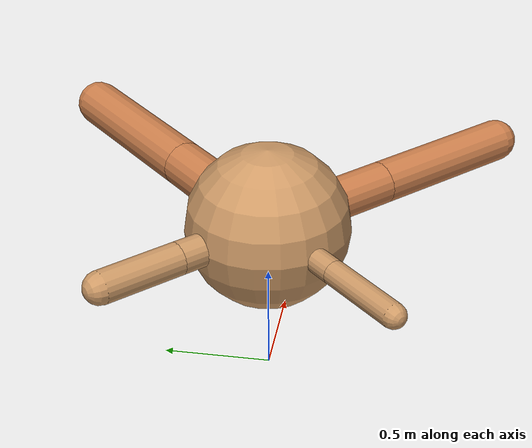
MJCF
<?xml version="1.0" ?>
<mujoco model="ant">

	<compiler angle="degree" coordinate="local" inertiafromgeom="true"/>

	<option integrator="RK4" timestep="0.01"/>

	<custom>

		<numeric data="0.0 0.0 0.55 1.0 0.0 0.0 0.0 0.0 1.0 0.0 -1.0 0.0 -1.0 0.0 1.0" name="init_qpos"/>

	</custom>

	<default>

		<joint armature="1" damping="1" limited="true"/>

		<geom conaffinity="0" condim="3" density="5.0" friction="1.5 0.1 0.1" margin="0.01" rgba="0.8 0.6 0.4 1"/>

	</default>

	<worldbody>

		<body name="torso" pos="0 0 0.75">

			<geom name="torso_geom" pos="0 0 0" size="0.37430672766689865" type="sphere"/>

			<!--joint armature="0" damping="0" limited="false" margin="0.01" name="root" pos="0 0 0" type="free"/-->

			<body name="front_left_leg" pos="0 0 0">

				<geom fromto="0 0 0 0.2 0.2 0" name="aux_1_geom" size="0.1109745231669503" type="capsule" rgba=".8 .5 .3 1"/>

				<body name="aux_1" pos="0.2 0.2 0">

					<joint axis="0 0 1" name="hip_1" pos="0.0 0.0 0.0" range="-40 40" type="hinge"/>

					<geom fromto="0 0 0 0.2901896917085083 0.2901896917085083 0" name="left_leg_geom" size="0.1109745231669503" type="capsule" rgba=".8 .5 .3 1"/>

					<body pos="0.2901896917085083 0.2901896917085083 0" name="front_left_foot">

						<joint axis="-1 1 0" name="ankle_1" pos="0.0 0.0 0.0" range="30 100" type="hinge"/>

						<geom fromto="0 0 0 0.5803793834170166 0.5803793834170166 0" name="left_ankle_geom" size="0.1109745231669503" type="capsule" rgba=".8 .5 .3 1"/>

					</body>

				</body>

			</body>

			<body name="front_right_leg" pos="0 0 0">

				<geom fromto="0 0 0 -0.2 0.2 0" name="aux_2_geom" size="0.0755437694327452" type="capsule"/>

				<body name="aux_2" pos="-0.2 0.2 0">

					<joint axis="0 0 1" name="hip_2" pos="0.0 0.0 0.0" range="-40 40" type="hinge"/>

					<geom fromto="0 0 0 -0.13429889529786482 0.13429889529786482 0" name="right_leg_geom" size="0.0755437694327452" type="capsule"/>

					<body pos="-0.13429889529786482 0.13429889529786482 0" name="front_right_foot">

						<joint axis="1 1 0" name="ankle_2" pos="0.0 0.0 0.0" range="-100 -30" type="hinge"/>

						<geom fromto="0 0 0 -0.26859779059572964 0.26859779059572964 0" name="right_ankle_geom" size="0.0755437694327452" type="capsule"/>

					</body>

				</body>

			</body>

			<body name="left_back_leg" pos="0 0 0">

				<geom fromto="0 0 0 -0.2 -0.2 0" name="aux_3_geom" size="0.05631156589230876" type="capsule"/>

				<body name="aux_3" pos="-0.2 -0.2 0">

					<joint axis="0 0 1" name="hip_3" pos="0.0 0.0 0.0" range="-40 40" type="hinge"/>

					<geom fromto="0 0 0 -0.13751472175940846 -0.13751472175940846 0" name="back_leg_geom" size="0.05631156589230876" type="capsule"/>

					<body pos="-0.13751472175940846 -0.13751472175940846 0" name="left_back_foot">

						<joint axis="-1 1 0" name="ankle_3" pos="0.0 0.0 0.0" range="-100 -30" type="hinge"/>

						<geom fromto="0 0 0 -0.2750294435188169 -0.2750294435188169 0" name="third_ankle_geom" size="0.05631156589230876" type="capsule"/>

					</body>

				</body>

			</body>

			<body name="right_back_leg" pos="0 0 0">

				<geom fromto="0 0 0 0.2 -0.2 0" name="aux_4_geom" size="0.10038463836449527" type="capsule" rgba=".8 .5 .3 1"/>

				<body name="aux_4" pos="0.2 -0.2 0">

					<joint axis="0 0 1" name="hip_4" pos="0.0 0.0 0.0" range="-40 40" type="hinge"/>

					<geom fromto="0 0 0 0.25816281416723424 -0.25816281416723424 0" name="rightback_leg_geom" size="0.10038463836449527" type="capsule" rgba=".8 .5 .3 1"/>

					<body pos="0.25816281416723424 -0.25816281416723424 0" name="right_back_foot">

						<joint axis="1 1 0" name="ankle_4" pos="0.0 0.0 0.0" range="30 100" type="hinge"/>

						<geom fromto="0 0 0 0.5163256283344685 -0.5163256283344685 0" name="fourth_ankle_geom" size="0.10038463836449527" type="capsule" rgba=".8 .5 .3 1"/>

					</body>

				</body>

			</body>

		</body>

	</worldbody>

	<actuator>

		<motor ctrllimited="true" ctrlrange="-1.0 1.0" joint="hip_4" gear="150"/>

		<motor ctrllimited="true" ctrlrange="-1.0 1.0" joint="ankle_4" gear="150"/>

		<motor ctrllimited="true" ctrlrange="-1.0 1.0" joint="hip_1" gear="150"/>

		<motor ctrllimited="true" ctrlrange="-1.0 1.0" joint="ankle_1" gear="150"/>

		<motor ctrllimited="true" ctrlrange="-1.0 1.0" joint="hip_2" gear="150"/>

		<motor ctrllimited="true" ctrlrange="-1.0 1.0" joint="ankle_2" gear="150"/>

		<motor ctrllimited="true" ctrlrange="-1.0 1.0" joint="hip_3" gear="150"/>

		<motor ctrllimited="true" ctrlrange="-1.0 1.0" joint="ankle_3" gear="150"/>

	</actuator>

</mujoco>
